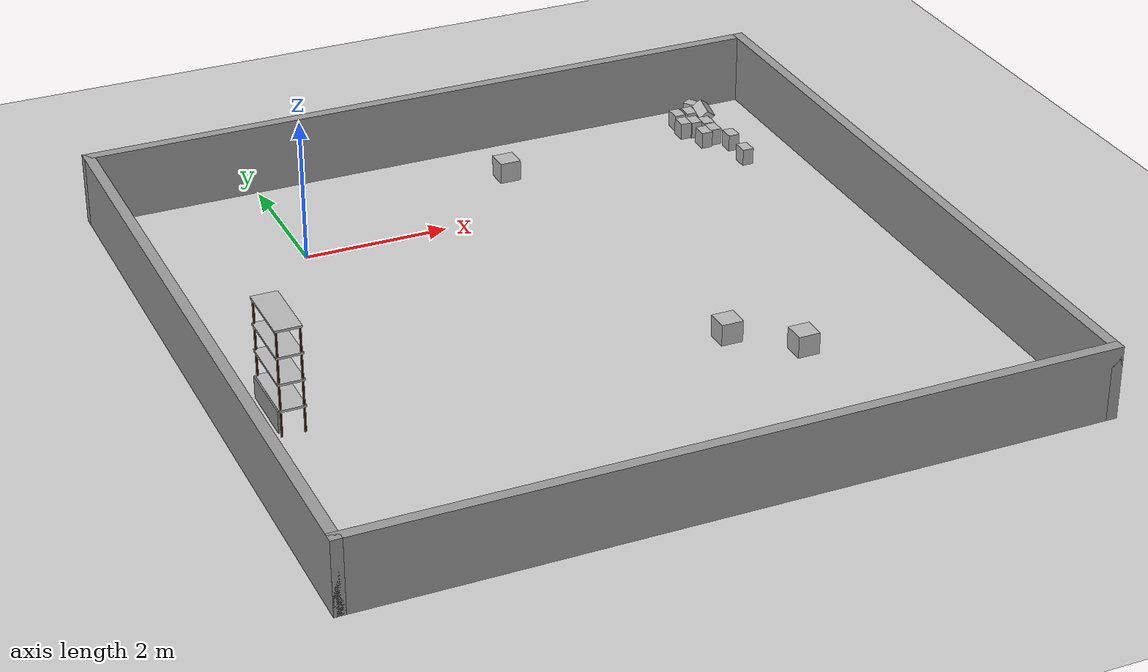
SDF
<sdf version="1.7">
 <world name="default">
  <model name="ground_plane">
   <static>1</static>
   <link name="link">
    <collision name="collision">
     <geometry><plane><normal>0 0 1</normal><size>100 100</size></plane></geometry>
     <surface><friction><ode><mu>100</mu><mu2>50</mu2></ode></friction></surface>
    </collision>
    <visual name="visual">
     <cast_shadows>0</cast_shadows>
     <geometry><plane><normal>0 0 1</normal><size>100 100</size></plane></geometry>
     <material>
      <script><uri>file://media/materials/scripts/gazebo.material</uri><name>Gazebo/Grey</name></script>
     </material>
    </visual>
   </link>
  </model>
  <model name="EmptyRoom">
   <pose>2.61415 -2.78471 0 0 -0 0</pose>
   <link name="Wall_1">
    <collision name="Wall_1_Collision">
     <geometry><box><size>10 0.15 1</size></box></geometry>
     <pose>0 0 0.5 0 -0 0</pose>
    </collision>
    <visual name="Wall_1_Visual">
     <pose>0 0 0.5 0 -0 0</pose>
     <geometry><box><size>10 0.15 1</size></box></geometry>
     <material>
      <script><uri>file://media/materials/scripts/gazebo.material</uri><name>Gazebo/Grey</name></script>
      <ambient>1 1 1 1</ambient>
     </material>
     <meta><layer>0</layer></meta>
    </visual>
    <pose>-4.925 0 0 0 -0 -1.5708</pose>
   </link>
   <link name="Wall_2">
    <collision name="Wall_2_Collision">
     <geometry><box><size>10 0.15 1</size></box></geometry>
     <pose>0 0 0.5 0 -0 0</pose>
    </collision>
    <visual name="Wall_2_Visual">
     <pose>0 0 0.5 0 -0 0</pose>
     <geometry><box><size>10 0.15 1</size></box></geometry>
     <material>
      <script><uri>file://media/materials/scripts/gazebo.material</uri><name>Gazebo/Grey</name></script>
      <ambient>1 1 1 1</ambient>
     </material>
     <meta><layer>0</layer></meta>
    </visual>
    <pose>-0 -4.925 0 0 -0 0</pose>
   </link>
   <link name="Wall_3">
    <collision name="Wall_3_Collision">
     <geometry><box><size>10 0.15 1</size></box></geometry>
     <pose>0 0 0.5 0 -0 0</pose>
    </collision>
    <visual name="Wall_3_Visual">
     <pose>0 0 0.5 0 -0 0</pose>
     <geometry><box><size>10 0.15 1</size></box></geometry>
     <material>
      <script><uri>file://media/materials/scripts/gazebo.material</uri><name>Gazebo/Grey</name></script>
      <ambient>1 1 1 1</ambient>
     </material>
     <meta><layer>0</layer></meta>
    </visual>
    <pose>4.925 0 0 0 -0 1.5708</pose>
   </link>
   <link name="Wall_4">
    <collision name="Wall_4_Collision">
     <geometry><box><size>10 0.15 1</size></box></geometry>
     <pose>0 0 0.5 0 -0 0</pose>
    </collision>
    <visual name="Wall_4_Visual">
     <pose>0 0 0.5 0 -0 0</pose>
     <geometry><box><size>10 0.15 1</size></box></geometry>
     <material>
      <script><uri>file://media/materials/scripts/gazebo.material</uri><name>Gazebo/Grey</name></script>
      <ambient>1 1 1 1</ambient>
     </material>
     <meta><layer>0</layer></meta>
    </visual>
    <pose>-0 4.925 0 0 -0 3.14159</pose>
   </link>
   <static>1</static>
  </model>
  <model name="box_4">
   <link name="link">
    <inertial>
     <inertia>
      <ixx>0.00220983</ixx>
      <ixy>0</ixy>
      <ixz>0</ixz>
      <iyy>0.00128087</iyy>
      <iyz>0</iyz>
      <izz>0.00244903</izz>
     </inertia>
     <mass>0.01</mass>
    </inertial>
    <visual name="visual1">
     <cast_shadows>0</cast_shadows>
     <geometry><mesh><uri>model://box/meshes/box.dae</uri></mesh></geometry>
     <material>
      <shader type="pixel"><normal_map>__default__</normal_map></shader>
      <emissive>0 0 0 1</emissive>
     </material>
     <pose>0 0 -0.12 0 -0 0</pose>
    </visual>
    <collision name="collision_0">
     <geometry><box><size>0.16 0.22 0.24</size></box></geometry>
     <surface>
      <friction>
       <ode><mu>1</mu><mu2>1</mu2><fdir1>0 0 0</fdir1><slip1>0</slip1><slip2>0</slip2></ode>
       <torsional>
        <coefficient>1</coefficient>
        <patch_radius>0</patch_radius>
        <surface_radius>0</surface_radius>
        <use_patch_radius>1</use_patch_radius>
        <ode><slip>0</slip></ode>
       </torsional>
      </friction>
      <bounce><restitution_coefficient>0</restitution_coefficient><threshold>1e+06</threshold></bounce>
      <contact>
       <collide_without_contact>0</collide_without_contact>
       <collide_without_contact_bitmask>1</collide_without_contact_bitmask>
       <collide_bitmask>1</collide_bitmask>
       <ode>
        <soft_cfm>0</soft_cfm>
        <soft_erp>0.2</soft_erp>
        <kp>1e+13</kp>
        <kd>1</kd>
        <max_vel>0.01</max_vel>
        <min_depth>0</min_depth>
       </ode>
       <bullet>
        <split_impulse>1</split_impulse>
        <split_impulse_penetration_threshold>-0.01</split_impulse_penetration_threshold>
        <soft_cfm>0</soft_cfm>
        <soft_erp>0.2</soft_erp>
        <kp>1e+13</kp>
        <kd>1</kd>
       </bullet>
      </contact>
     </surface>
    </collision>
   </link>
   <static>0</static>
   <pose>6.3618 0.900243 0.12 0 3e-06 0.003147</pose>
  </model>
  <model name="box_6">
   <link name="link">
    <inertial>
     <inertia>
      <ixx>0.00220983</ixx>
      <ixy>0</ixy>
      <ixz>0</ixz>
      <iyy>0.00128087</iyy>
      <iyz>0</iyz>
      <izz>0.00244903</izz>
     </inertia>
     <mass>0.01</mass>
    </inertial>
    <visual name="visual1">
     <cast_shadows>0</cast_shadows>
     <geometry><mesh><uri>model://box/meshes/box.dae</uri></mesh></geometry>
     <material>
      <shader type="pixel"><normal_map>__default__</normal_map></shader>
      <emissive>0 0 0 1</emissive>
     </material>
     <pose>0 0 -0.12 0 -0 0</pose>
    </visual>
    <collision name="collision_0">
     <geometry><box><size>0.16 0.22 0.24</size></box></geometry>
     <surface>
      <friction>
       <ode><mu>1</mu><mu2>1</mu2><fdir1>0 0 0</fdir1><slip1>0</slip1><slip2>0</slip2></ode>
       <torsional>
        <coefficient>1</coefficient>
        <patch_radius>0</patch_radius>
        <surface_radius>0</surface_radius>
        <use_patch_radius>1</use_patch_radius>
        <ode><slip>0</slip></ode>
       </torsional>
      </friction>
      <bounce><restitution_coefficient>0</restitution_coefficient><threshold>1e+06</threshold></bounce>
      <contact>
       <collide_without_contact>0</collide_without_contact>
       <collide_without_contact_bitmask>1</collide_without_contact_bitmask>
       <collide_bitmask>1</collide_bitmask>
       <ode>
        <soft_cfm>0</soft_cfm>
        <soft_erp>0.2</soft_erp>
        <kp>1e+13</kp>
        <kd>1</kd>
        <max_vel>0.01</max_vel>
        <min_depth>0</min_depth>
       </ode>
       <bullet>
        <split_impulse>1</split_impulse>
        <split_impulse_penetration_threshold>-0.01</split_impulse_penetration_threshold>
        <soft_cfm>0</soft_cfm>
        <soft_erp>0.2</soft_erp>
        <kp>1e+13</kp>
        <kd>1</kd>
       </bullet>
      </contact>
     </surface>
    </collision>
   </link>
   <static>0</static>
   <pose>6.52175 0.940974 0.12 0 -0 0.004081</pose>
  </model>
  <model name="box_7">
   <link name="link">
    <inertial>
     <inertia>
      <ixx>0.00220983</ixx>
      <ixy>0</ixy>
      <ixz>0</ixz>
      <iyy>0.00128087</iyy>
      <iyz>0</iyz>
      <izz>0.00244903</izz>
     </inertia>
     <mass>0.01</mass>
    </inertial>
    <visual name="visual1">
     <cast_shadows>0</cast_shadows>
     <geometry><mesh><uri>model://box/meshes/box.dae</uri></mesh></geometry>
     <material>
      <shader type="pixel"><normal_map>__default__</normal_map></shader>
      <emissive>0 0 0 1</emissive>
     </material>
     <pose>0 0 -0.12 0 -0 0</pose>
    </visual>
    <collision name="collision_0">
     <geometry><box><size>0.16 0.22 0.24</size></box></geometry>
     <surface>
      <friction>
       <ode><mu>1</mu><mu2>1</mu2><fdir1>0 0 0</fdir1><slip1>0</slip1><slip2>0</slip2></ode>
       <torsional>
        <coefficient>1</coefficient>
        <patch_radius>0</patch_radius>
        <surface_radius>0</surface_radius>
        <use_patch_radius>1</use_patch_radius>
        <ode><slip>0</slip></ode>
       </torsional>
      </friction>
      <bounce><restitution_coefficient>0</restitution_coefficient><threshold>1e+06</threshold></bounce>
      <contact>
       <collide_without_contact>0</collide_without_contact>
       <collide_without_contact_bitmask>1</collide_without_contact_bitmask>
       <collide_bitmask>1</collide_bitmask>
       <ode>
        <soft_cfm>0</soft_cfm>
        <soft_erp>0.2</soft_erp>
        <kp>1e+13</kp>
        <kd>1</kd>
        <max_vel>0.01</max_vel>
        <min_depth>0</min_depth>
       </ode>
       <bullet>
        <split_impulse>1</split_impulse>
        <split_impulse_penetration_threshold>-0.01</split_impulse_penetration_threshold>
        <soft_cfm>0</soft_cfm>
        <soft_erp>0.2</soft_erp>
        <kp>1e+13</kp>
        <kd>1</kd>
       </bullet>
      </contact>
     </surface>
    </collision>
   </link>
   <static>0</static>
   <pose>6.53397 1.17825 0.12 0 0 -0.02989</pose>
  </model>
  <model name="rack_2">
   <link name="link">
    <inertial>
     <mass>0.1</mass>
     <inertia><ixx>0.01857</ixx><ixy>0</ixy><ixz>0</ixz><iyy>0.015598</iyy><iyz>0</iyz><izz>0.00305</izz></inertia>
    </inertial>
    <visual name="visual1">
     <cast_shadows>0</cast_shadows>
     <geometry><mesh><uri>model://rack/meshes/rack.dae</uri></mesh></geometry>
     <material>
      <shader type="pixel"><normal_map>__default__</normal_map></shader>
      <emissive>0 0 0 1</emissive>
     </material>
    </visual>
    <visual name="visual_2">
     <cast_shadows>0</cast_shadows>
     <geometry><box><size>0.02 0.9 0.31</size></box></geometry>
     <material>
      <lighting>1</lighting>
      <script><uri>file://media/materials/scripts/gazebo.material</uri><name>Gazebo/Grey</name></script>
      <shader type="pixel"><normal_map>__default__</normal_map></shader>
      <ambient>0.3 0.3 0.3 1</ambient>
      <diffuse>0.7 0.7 0.7 1</diffuse>
      <specular>0.01 0.01 0.01 1</specular>
      <emissive>0 0 0 1</emissive>
     </material>
     <pose>-0.185 0 0.22 0 -0 0</pose>
    </visual>
    <collision name="collision_7">
     <pose>0 0 0.36 0 1.57 1.57</pose>
     <geometry><box><size>0.05 0.35 0.91</size></box></geometry>
     <surface>
      <friction>
       <ode><mu>1</mu><mu2>1</mu2><fdir1>0 0 0</fdir1><slip1>0</slip1><slip2>0</slip2></ode>
       <torsional>
        <coefficient>1</coefficient>
        <patch_radius>0</patch_radius>
        <surface_radius>0</surface_radius>
        <use_patch_radius>1</use_patch_radius>
        <ode><slip>0</slip></ode>
       </torsional>
      </friction>
      <bounce><restitution_coefficient>0</restitution_coefficient><threshold>1e+06</threshold></bounce>
      <contact>
       <collide_without_contact>0</collide_without_contact>
       <collide_without_contact_bitmask>1</collide_without_contact_bitmask>
       <collide_bitmask>1</collide_bitmask>
       <ode>
        <soft_cfm>0</soft_cfm>
        <soft_erp>0.2</soft_erp>
        <kp>1e+15</kp>
        <kd>1e+13</kd>
        <max_vel>0.01</max_vel>
        <min_depth>0</min_depth>
       </ode>
       <bullet>
        <split_impulse>1</split_impulse>
        <split_impulse_penetration_threshold>-0.01</split_impulse_penetration_threshold>
        <soft_cfm>0</soft_cfm>
        <soft_erp>0.2</soft_erp>
        <kp>1e+13</kp>
        <kd>1</kd>
       </bullet>
      </contact>
     </surface>
    </collision>
    <collision name="collision_6">
     <pose>0 0 0.725 0 1.57 1.57</pose>
     <geometry><box><size>0.05 0.35 0.91</size></box></geometry>
     <surface>
      <friction>
       <ode><mu>1</mu><mu2>1</mu2><fdir1>0 0 0</fdir1><slip1>0</slip1><slip2>0</slip2></ode>
       <torsional>
        <coefficient>1</coefficient>
        <patch_radius>0</patch_radius>
        <surface_radius>0</surface_radius>
        <use_patch_radius>1</use_patch_radius>
        <ode><slip>0</slip></ode>
       </torsional>
      </friction>
      <bounce><restitution_coefficient>0</restitution_coefficient><threshold>1e+06</threshold></bounce>
      <contact>
       <collide_without_contact>0</collide_without_contact>
       <collide_without_contact_bitmask>1</collide_without_contact_bitmask>
       <collide_bitmask>1</collide_bitmask>
       <ode>
        <soft_cfm>0</soft_cfm>
        <soft_erp>0.2</soft_erp>
        <kp>1e+15</kp>
        <kd>1e+13</kd>
        <max_vel>0.01</max_vel>
        <min_depth>0</min_depth>
       </ode>
       <bullet>
        <split_impulse>1</split_impulse>
        <split_impulse_penetration_threshold>-0.01</split_impulse_penetration_threshold>
        <soft_cfm>0</soft_cfm>
        <soft_erp>0.2</soft_erp>
        <kp>1e+13</kp>
        <kd>1</kd>
       </bullet>
      </contact>
     </surface>
    </collision>
    <collision name="collision_5">
     <pose>0 0 1.09 0 1.57 1.57</pose>
     <geometry><box><size>0.05 0.35 0.91</size></box></geometry>
     <surface>
      <friction>
       <ode><mu>1</mu><mu2>1</mu2><fdir1>0 0 0</fdir1><slip1>0</slip1><slip2>0</slip2></ode>
       <torsional>
        <coefficient>1</coefficient>
        <patch_radius>0</patch_radius>
        <surface_radius>0</surface_radius>
        <use_patch_radius>1</use_patch_radius>
        <ode><slip>0</slip></ode>
       </torsional>
      </friction>
      <bounce><restitution_coefficient>0</restitution_coefficient><threshold>1e+06</threshold></bounce>
      <contact>
       <collide_without_contact>0</collide_without_contact>
       <collide_without_contact_bitmask>1</collide_without_contact_bitmask>
       <collide_bitmask>1</collide_bitmask>
       <ode>
        <soft_cfm>0</soft_cfm>
        <soft_erp>0.2</soft_erp>
        <kp>1e+15</kp>
        <kd>1e+13</kd>
        <max_vel>0.01</max_vel>
        <min_depth>0</min_depth>
       </ode>
       <bullet>
        <split_impulse>1</split_impulse>
        <split_impulse_penetration_threshold>-0.01</split_impulse_penetration_threshold>
        <soft_cfm>0</soft_cfm>
        <soft_erp>0.2</soft_erp>
        <kp>1e+13</kp>
        <kd>1</kd>
       </bullet>
      </contact>
     </surface>
    </collision>
    <collision name="collision_3">
     <pose>0 0 1.455 0 1.57 1.57</pose>
     <geometry><box><size>0.05 0.35 0.91</size></box></geometry>
     <surface>
      <friction>
       <ode><mu>1</mu><mu2>1</mu2><fdir1>0 0 0</fdir1><slip1>0</slip1><slip2>0</slip2></ode>
       <torsional>
        <coefficient>1</coefficient>
        <patch_radius>0</patch_radius>
        <surface_radius>0</surface_radius>
        <use_patch_radius>1</use_patch_radius>
        <ode><slip>0</slip></ode>
       </torsional>
      </friction>
      <bounce><restitution_coefficient>0</restitution_coefficient><threshold>1e+06</threshold></bounce>
      <contact>
       <collide_without_contact>0</collide_without_contact>
       <collide_without_contact_bitmask>1</collide_without_contact_bitmask>
       <collide_bitmask>1</collide_bitmask>
       <ode>
        <soft_cfm>0</soft_cfm>
        <soft_erp>0.2</soft_erp>
        <kp>1e+15</kp>
        <kd>1e+13</kd>
        <max_vel>0.01</max_vel>
        <min_depth>0</min_depth>
       </ode>
       <bullet>
        <split_impulse>1</split_impulse>
        <split_impulse_penetration_threshold>-0.01</split_impulse_penetration_threshold>
        <soft_cfm>0</soft_cfm>
        <soft_erp>0.2</soft_erp>
        <kp>1e+13</kp>
        <kd>1</kd>
       </bullet>
      </contact>
     </surface>
    </collision>
    <collision name="collision_1">
     <pose>0 0.43 0.73 0 -0 1.57</pose>
     <geometry><box><size>0.05 0.36 1.46</size></box></geometry>
     <surface>
      <friction>
       <ode><mu>1</mu><mu2>1</mu2><fdir1>0 0 0</fdir1><slip1>0</slip1><slip2>0</slip2></ode>
       <torsional>
        <coefficient>1</coefficient>
        <patch_radius>0</patch_radius>
        <surface_radius>0</surface_radius>
        <use_patch_radius>1</use_patch_radius>
        <ode><slip>0</slip></ode>
       </torsional>
      </friction>
      <bounce><restitution_coefficient>0</restitution_coefficient><threshold>1e+06</threshold></bounce>
      <contact>
       <collide_without_contact>0</collide_without_contact>
       <collide_without_contact_bitmask>1</collide_without_contact_bitmask>
       <collide_bitmask>1</collide_bitmask>
       <ode>
        <soft_cfm>0</soft_cfm>
        <soft_erp>0.2</soft_erp>
        <kp>1e+15</kp>
        <kd>1e+13</kd>
        <max_vel>0.01</max_vel>
        <min_depth>0</min_depth>
       </ode>
       <bullet>
        <split_impulse>1</split_impulse>
        <split_impulse_penetration_threshold>-0.01</split_impulse_penetration_threshold>
        <soft_cfm>0</soft_cfm>
        <soft_erp>0.2</soft_erp>
        <kp>1e+13</kp>
        <kd>1</kd>
       </bullet>
      </contact>
     </surface>
    </collision>
    <collision name="collision_2">
     <pose>0 -0.43 0.73 0 -0 1.57</pose>
     <geometry><box><size>0.05 0.36 1.46</size></box></geometry>
     <surface>
      <friction>
       <ode><mu>1</mu><mu2>1</mu2><fdir1>0 0 0</fdir1><slip1>0</slip1><slip2>0</slip2></ode>
       <torsional>
        <coefficient>1</coefficient>
        <patch_radius>0</patch_radius>
        <surface_radius>0</surface_radius>
        <use_patch_radius>1</use_patch_radius>
        <ode><slip>0</slip></ode>
       </torsional>
      </friction>
      <bounce><restitution_coefficient>0</restitution_coefficient><threshold>1e+06</threshold></bounce>
      <contact>
       <collide_without_contact>0</collide_without_contact>
       <collide_without_contact_bitmask>1</collide_without_contact_bitmask>
       <collide_bitmask>1</collide_bitmask>
       <ode>
        <soft_cfm>0</soft_cfm>
        <soft_erp>0.2</soft_erp>
        <kp>1e+15</kp>
        <kd>1e+13</kd>
        <max_vel>0.01</max_vel>
        <min_depth>0</min_depth>
       </ode>
       <bullet>
        <split_impulse>1</split_impulse>
        <split_impulse_penetration_threshold>-0.01</split_impulse_penetration_threshold>
        <soft_cfm>0</soft_cfm>
        <soft_erp>0.2</soft_erp>
        <kp>1e+13</kp>
        <kd>1</kd>
       </bullet>
      </contact>
     </surface>
    </collision>
    <collision name="collision">
     <pose>-0.185 0 0.22 0 -0 0</pose>
     <geometry><box><size>0.02 0.9 0.31</size></box></geometry>
     <surface>
      <friction>
       <ode><mu>1</mu><mu2>1</mu2><fdir1>0 0 0</fdir1><slip1>0</slip1><slip2>0</slip2></ode>
       <torsional>
        <coefficient>1</coefficient>
        <patch_radius>0</patch_radius>
        <surface_radius>0</surface_radius>
        <use_patch_radius>1</use_patch_radius>
        <ode><slip>0</slip></ode>
       </torsional>
      </friction>
      <bounce><restitution_coefficient>0</restitution_coefficient><threshold>1e+06</threshold></bounce>
      <contact>
       <collide_without_contact>0</collide_without_contact>
       <collide_without_contact_bitmask>1</collide_without_contact_bitmask>
       <collide_bitmask>1</collide_bitmask>
       <ode>
        <soft_cfm>0</soft_cfm>
        <soft_erp>0.2</soft_erp>
        <kp>1e+15</kp>
        <kd>1e+13</kd>
        <max_vel>0.01</max_vel>
        <min_depth>0</min_depth>
       </ode>
       <bullet>
        <split_impulse>1</split_impulse>
        <split_impulse_penetration_threshold>-0.01</split_impulse_penetration_threshold>
        <soft_cfm>0</soft_cfm>
        <soft_erp>0.2</soft_erp>
        <kp>1e+13</kp>
        <kd>1</kd>
       </bullet>
      </contact>
     </surface>
    </collision>
   </link>
   <static>0</static>
   <pose>-1.578 -3.67534 -0 0 -0 0</pose>
  </model>
  <model name="box_10">
   <link name="link">
    <inertial>
     <inertia>
      <ixx>0.00220983</ixx>
      <ixy>0</ixy>
      <ixz>0</ixz>
      <iyy>0.00128087</iyy>
      <iyz>0</iyz>
      <izz>0.00244903</izz>
     </inertia>
     <mass>0.01</mass>
    </inertial>
    <visual name="visual1">
     <cast_shadows>0</cast_shadows>
     <geometry><mesh><uri>model://box/meshes/box.dae</uri></mesh></geometry>
     <material>
      <shader type="pixel"><normal_map>__default__</normal_map></shader>
      <emissive>0 0 0 1</emissive>
     </material>
     <pose>0 0 -0.12 0 -0 0</pose>
    </visual>
    <collision name="collision_0">
     <geometry><box><size>0.16 0.22 0.24</size></box></geometry>
     <surface>
      <friction>
       <ode><mu>1</mu><mu2>1</mu2><fdir1>0 0 0</fdir1><slip1>0</slip1><slip2>0</slip2></ode>
       <torsional>
        <coefficient>1</coefficient>
        <patch_radius>0</patch_radius>
        <surface_radius>0</surface_radius>
        <use_patch_radius>1</use_patch_radius>
        <ode><slip>0</slip></ode>
       </torsional>
      </friction>
      <bounce><restitution_coefficient>0</restitution_coefficient><threshold>1e+06</threshold></bounce>
      <contact>
       <collide_without_contact>0</collide_without_contact>
       <collide_without_contact_bitmask>1</collide_without_contact_bitmask>
       <collide_bitmask>1</collide_bitmask>
       <ode>
        <soft_cfm>0</soft_cfm>
        <soft_erp>0.2</soft_erp>
        <kp>1e+13</kp>
        <kd>1</kd>
        <max_vel>0.01</max_vel>
        <min_depth>0</min_depth>
       </ode>
       <bullet>
        <split_impulse>1</split_impulse>
        <split_impulse_penetration_threshold>-0.01</split_impulse_penetration_threshold>
        <soft_cfm>0</soft_cfm>
        <soft_erp>0.2</soft_erp>
        <kp>1e+13</kp>
        <kd>1</kd>
       </bullet>
      </contact>
     </surface>
    </collision>
   </link>
   <static>0</static>
   <pose>6.67863 0.672339 0.119992 -2e-06 6e-06 -0.012099</pose>
  </model>
  <model name="box_12">
   <link name="link">
    <inertial>
     <inertia>
      <ixx>0.00220983</ixx>
      <ixy>0</ixy>
      <ixz>0</ixz>
      <iyy>0.00128087</iyy>
      <iyz>0</iyz>
      <izz>0.00244903</izz>
     </inertia>
     <mass>0.01</mass>
    </inertial>
    <visual name="visual1">
     <cast_shadows>0</cast_shadows>
     <geometry><mesh><uri>model://box/meshes/box.dae</uri></mesh></geometry>
     <material>
      <shader type="pixel"><normal_map>__default__</normal_map></shader>
      <emissive>0 0 0 1</emissive>
     </material>
     <pose>0 0 -0.12 0 -0 0</pose>
    </visual>
    <collision name="collision_0">
     <geometry><box><size>0.16 0.22 0.24</size></box></geometry>
     <surface>
      <friction>
       <ode><mu>1</mu><mu2>1</mu2><fdir1>0 0 0</fdir1><slip1>0</slip1><slip2>0</slip2></ode>
       <torsional>
        <coefficient>1</coefficient>
        <patch_radius>0</patch_radius>
        <surface_radius>0</surface_radius>
        <use_patch_radius>1</use_patch_radius>
        <ode><slip>0</slip></ode>
       </torsional>
      </friction>
      <bounce><restitution_coefficient>0</restitution_coefficient><threshold>1e+06</threshold></bounce>
      <contact>
       <collide_without_contact>0</collide_without_contact>
       <collide_without_contact_bitmask>1</collide_without_contact_bitmask>
       <collide_bitmask>1</collide_bitmask>
       <ode>
        <soft_cfm>0</soft_cfm>
        <soft_erp>0.2</soft_erp>
        <kp>1e+13</kp>
        <kd>1</kd>
        <max_vel>0.01</max_vel>
        <min_depth>0</min_depth>
       </ode>
       <bullet>
        <split_impulse>1</split_impulse>
        <split_impulse_penetration_threshold>-0.01</split_impulse_penetration_threshold>
        <soft_cfm>0</soft_cfm>
        <soft_erp>0.2</soft_erp>
        <kp>1e+13</kp>
        <kd>1</kd>
       </bullet>
      </contact>
     </surface>
    </collision>
   </link>
   <static>0</static>
   <pose>6.6123 1.42377 0.259049 -0.925798 -0.738903 -0.391145</pose>
  </model>
  <model name="box_14">
   <link name="link">
    <inertial>
     <inertia>
      <ixx>0.00220983</ixx>
      <ixy>0</ixy>
      <ixz>0</ixz>
      <iyy>0.00128087</iyy>
      <iyz>0</iyz>
      <izz>0.00244903</izz>
     </inertia>
     <mass>0.01</mass>
    </inertial>
    <visual name="visual1">
     <cast_shadows>0</cast_shadows>
     <geometry><mesh><uri>model://box/meshes/box.dae</uri></mesh></geometry>
     <material>
      <shader type="pixel"><normal_map>__default__</normal_map></shader>
      <emissive>0 0 0 1</emissive>
     </material>
     <pose>0 0 -0.12 0 -0 0</pose>
    </visual>
    <collision name="collision_0">
     <geometry><box><size>0.16 0.22 0.24</size></box></geometry>
     <surface>
      <friction>
       <ode><mu>1</mu><mu2>1</mu2><fdir1>0 0 0</fdir1><slip1>0</slip1><slip2>0</slip2></ode>
       <torsional>
        <coefficient>1</coefficient>
        <patch_radius>0</patch_radius>
        <surface_radius>0</surface_radius>
        <use_patch_radius>1</use_patch_radius>
        <ode><slip>0</slip></ode>
       </torsional>
      </friction>
      <bounce><restitution_coefficient>0</restitution_coefficient><threshold>1e+06</threshold></bounce>
      <contact>
       <collide_without_contact>0</collide_without_contact>
       <collide_without_contact_bitmask>1</collide_without_contact_bitmask>
       <collide_bitmask>1</collide_bitmask>
       <ode>
        <soft_cfm>0</soft_cfm>
        <soft_erp>0.2</soft_erp>
        <kp>1e+13</kp>
        <kd>1</kd>
        <max_vel>0.01</max_vel>
        <min_depth>0</min_depth>
       </ode>
       <bullet>
        <split_impulse>1</split_impulse>
        <split_impulse_penetration_threshold>-0.01</split_impulse_penetration_threshold>
        <soft_cfm>0</soft_cfm>
        <soft_erp>0.2</soft_erp>
        <kp>1e+13</kp>
        <kd>1</kd>
       </bullet>
      </contact>
     </surface>
    </collision>
   </link>
   <static>0</static>
   <pose>6.37632 1.2596 0.120001 -1e-06 -0 -0.030069</pose>
  </model>
  <model name="box_16">
   <link name="link">
    <inertial>
     <inertia>
      <ixx>0.00220983</ixx>
      <ixy>0</ixy>
      <ixz>0</ixz>
      <iyy>0.00128087</iyy>
      <iyz>0</iyz>
      <izz>0.00244903</izz>
     </inertia>
     <mass>0.01</mass>
    </inertial>
    <visual name="visual1">
     <cast_shadows>0</cast_shadows>
     <geometry><mesh><uri>model://box/meshes/box.dae</uri></mesh></geometry>
     <material>
      <shader type="pixel"><normal_map>__default__</normal_map></shader>
      <emissive>0 0 0 1</emissive>
     </material>
     <pose>0 0 -0.12 0 -0 0</pose>
    </visual>
    <collision name="collision_0">
     <geometry><box><size>0.16 0.22 0.24</size></box></geometry>
     <surface>
      <friction>
       <ode><mu>1</mu><mu2>1</mu2><fdir1>0 0 0</fdir1><slip1>0</slip1><slip2>0</slip2></ode>
       <torsional>
        <coefficient>1</coefficient>
        <patch_radius>0</patch_radius>
        <surface_radius>0</surface_radius>
        <use_patch_radius>1</use_patch_radius>
        <ode><slip>0</slip></ode>
       </torsional>
      </friction>
      <bounce><restitution_coefficient>0</restitution_coefficient><threshold>1e+06</threshold></bounce>
      <contact>
       <collide_without_contact>0</collide_without_contact>
       <collide_without_contact_bitmask>1</collide_without_contact_bitmask>
       <collide_bitmask>1</collide_bitmask>
       <ode>
        <soft_cfm>0</soft_cfm>
        <soft_erp>0.2</soft_erp>
        <kp>1e+13</kp>
        <kd>1</kd>
        <max_vel>0.01</max_vel>
        <min_depth>0</min_depth>
       </ode>
       <bullet>
        <split_impulse>1</split_impulse>
        <split_impulse_penetration_threshold>-0.01</split_impulse_penetration_threshold>
        <soft_cfm>0</soft_cfm>
        <soft_erp>0.2</soft_erp>
        <kp>1e+13</kp>
        <kd>1</kd>
       </bullet>
      </contact>
     </surface>
    </collision>
   </link>
   <static>0</static>
   <pose>6.21711 1.28742 0.11999 1e-06 3e-06 -0.030112</pose>
  </model>
  <model name="box_17">
   <link name="link">
    <inertial>
     <inertia>
      <ixx>0.00220983</ixx>
      <ixy>0</ixy>
      <ixz>0</ixz>
      <iyy>0.00128087</iyy>
      <iyz>0</iyz>
      <izz>0.00244903</izz>
     </inertia>
     <mass>0.01</mass>
    </inertial>
    <visual name="visual1">
     <cast_shadows>0</cast_shadows>
     <geometry><mesh><uri>model://box/meshes/box.dae</uri></mesh></geometry>
     <material>
      <shader type="pixel"><normal_map>__default__</normal_map></shader>
      <emissive>0 0 0 1</emissive>
     </material>
     <pose>0 0 -0.12 0 -0 0</pose>
    </visual>
    <collision name="collision_0">
     <geometry><box><size>0.16 0.22 0.24</size></box></geometry>
     <surface>
      <friction>
       <ode><mu>1</mu><mu2>1</mu2><fdir1>0 0 0</fdir1><slip1>0</slip1><slip2>0</slip2></ode>
       <torsional>
        <coefficient>1</coefficient>
        <patch_radius>0</patch_radius>
        <surface_radius>0</surface_radius>
        <use_patch_radius>1</use_patch_radius>
        <ode><slip>0</slip></ode>
       </torsional>
      </friction>
      <bounce><restitution_coefficient>0</restitution_coefficient><threshold>1e+06</threshold></bounce>
      <contact>
       <collide_without_contact>0</collide_without_contact>
       <collide_without_contact_bitmask>1</collide_without_contact_bitmask>
       <collide_bitmask>1</collide_bitmask>
       <ode>
        <soft_cfm>0</soft_cfm>
        <soft_erp>0.2</soft_erp>
        <kp>1e+13</kp>
        <kd>1</kd>
        <max_vel>0.01</max_vel>
        <min_depth>0</min_depth>
       </ode>
       <bullet>
        <split_impulse>1</split_impulse>
        <split_impulse_penetration_threshold>-0.01</split_impulse_penetration_threshold>
        <soft_cfm>0</soft_cfm>
        <soft_erp>0.2</soft_erp>
        <kp>1e+13</kp>
        <kd>1</kd>
       </bullet>
      </contact>
     </surface>
    </collision>
   </link>
   <static>0</static>
   <pose>6.44666 1.56372 0.119849 2.3e-05 1.5e-05 -0.001854</pose>
  </model>
  <model name="box_18">
   <link name="link">
    <inertial>
     <inertia>
      <ixx>0.00220983</ixx>
      <ixy>0</ixy>
      <ixz>0</ixz>
      <iyy>0.00128087</iyy>
      <iyz>0</iyz>
      <izz>0.00244903</izz>
     </inertia>
     <mass>0.01</mass>
    </inertial>
    <visual name="visual1">
     <cast_shadows>0</cast_shadows>
     <geometry><mesh><uri>model://box/meshes/box.dae</uri></mesh></geometry>
     <material>
      <shader type="pixel"><normal_map>__default__</normal_map></shader>
      <emissive>0 0 0 1</emissive>
     </material>
     <pose>0 0 -0.12 0 -0 0</pose>
    </visual>
    <collision name="collision_0">
     <geometry><box><size>0.16 0.22 0.24</size></box></geometry>
     <surface>
      <friction>
       <ode><mu>1</mu><mu2>1</mu2><fdir1>0 0 0</fdir1><slip1>0</slip1><slip2>0</slip2></ode>
       <torsional>
        <coefficient>1</coefficient>
        <patch_radius>0</patch_radius>
        <surface_radius>0</surface_radius>
        <use_patch_radius>1</use_patch_radius>
        <ode><slip>0</slip></ode>
       </torsional>
      </friction>
      <bounce><restitution_coefficient>0</restitution_coefficient><threshold>1e+06</threshold></bounce>
      <contact>
       <collide_without_contact>0</collide_without_contact>
       <collide_without_contact_bitmask>1</collide_without_contact_bitmask>
       <collide_bitmask>1</collide_bitmask>
       <ode>
        <soft_cfm>0</soft_cfm>
        <soft_erp>0.2</soft_erp>
        <kp>1e+13</kp>
        <kd>1</kd>
        <max_vel>0.01</max_vel>
        <min_depth>0</min_depth>
       </ode>
       <bullet>
        <split_impulse>1</split_impulse>
        <split_impulse_penetration_threshold>-0.01</split_impulse_penetration_threshold>
        <soft_cfm>0</soft_cfm>
        <soft_erp>0.2</soft_erp>
        <kp>1e+13</kp>
        <kd>1</kd>
       </bullet>
      </contact>
     </surface>
    </collision>
   </link>
   <static>0</static>
   <pose>6.65194 0.18037 0.12 0 4e-06 -0.001246</pose>
  </model>
  <model name="box_20">
   <link name="link">
    <inertial>
     <inertia>
      <ixx>0.00220983</ixx>
      <ixy>0</ixy>
      <ixz>0</ixz>
      <iyy>0.00128087</iyy>
      <iyz>0</iyz>
      <izz>0.00244903</izz>
     </inertia>
     <mass>0.01</mass>
    </inertial>
    <visual name="visual1">
     <cast_shadows>0</cast_shadows>
     <geometry><mesh><uri>model://box/meshes/box.dae</uri></mesh></geometry>
     <material>
      <shader type="pixel"><normal_map>__default__</normal_map></shader>
      <emissive>0 0 0 1</emissive>
     </material>
     <pose>0 0 -0.12 0 -0 0</pose>
    </visual>
    <collision name="collision_0">
     <geometry><box><size>0.16 0.22 0.24</size></box></geometry>
     <surface>
      <friction>
       <ode><mu>1</mu><mu2>1</mu2><fdir1>0 0 0</fdir1><slip1>0</slip1><slip2>0</slip2></ode>
       <torsional>
        <coefficient>1</coefficient>
        <patch_radius>0</patch_radius>
        <surface_radius>0</surface_radius>
        <use_patch_radius>1</use_patch_radius>
        <ode><slip>0</slip></ode>
       </torsional>
      </friction>
      <bounce><restitution_coefficient>0</restitution_coefficient><threshold>1e+06</threshold></bounce>
      <contact>
       <collide_without_contact>0</collide_without_contact>
       <collide_without_contact_bitmask>1</collide_without_contact_bitmask>
       <collide_bitmask>1</collide_bitmask>
       <ode>
        <soft_cfm>0</soft_cfm>
        <soft_erp>0.2</soft_erp>
        <kp>1e+13</kp>
        <kd>1</kd>
        <max_vel>0.01</max_vel>
        <min_depth>0</min_depth>
       </ode>
       <bullet>
        <split_impulse>1</split_impulse>
        <split_impulse_penetration_threshold>-0.01</split_impulse_penetration_threshold>
        <soft_cfm>0</soft_cfm>
        <soft_erp>0.2</soft_erp>
        <kp>1e+13</kp>
        <kd>1</kd>
       </bullet>
      </contact>
     </surface>
    </collision>
   </link>
   <static>0</static>
   <pose>6.63126 1.80308 0.11 -1.5708 -0 0.562607</pose>
  </model>
  <model name="box_21">
   <link name="link">
    <inertial>
     <inertia>
      <ixx>0.00220983</ixx>
      <ixy>0</ixy>
      <ixz>0</ixz>
      <iyy>0.00128087</iyy>
      <iyz>0</iyz>
      <izz>0.00244903</izz>
     </inertia>
     <mass>0.01</mass>
    </inertial>
    <visual name="visual1">
     <cast_shadows>0</cast_shadows>
     <geometry><mesh><uri>model://box/meshes/box.dae</uri></mesh></geometry>
     <material>
      <shader type="pixel"><normal_map>__default__</normal_map></shader>
      <emissive>0 0 0 1</emissive>
     </material>
     <pose>0 0 -0.12 0 -0 0</pose>
    </visual>
    <collision name="collision_0">
     <geometry><box><size>0.16 0.22 0.24</size></box></geometry>
     <surface>
      <friction>
       <ode><mu>1</mu><mu2>1</mu2><fdir1>0 0 0</fdir1><slip1>0</slip1><slip2>0</slip2></ode>
       <torsional>
        <coefficient>1</coefficient>
        <patch_radius>0</patch_radius>
        <surface_radius>0</surface_radius>
        <use_patch_radius>1</use_patch_radius>
        <ode><slip>0</slip></ode>
       </torsional>
      </friction>
      <bounce><restitution_coefficient>0</restitution_coefficient><threshold>1e+06</threshold></bounce>
      <contact>
       <collide_without_contact>0</collide_without_contact>
       <collide_without_contact_bitmask>1</collide_without_contact_bitmask>
       <collide_bitmask>1</collide_bitmask>
       <ode>
        <soft_cfm>0</soft_cfm>
        <soft_erp>0.2</soft_erp>
        <kp>1e+13</kp>
        <kd>1</kd>
        <max_vel>0.01</max_vel>
        <min_depth>0</min_depth>
       </ode>
       <bullet>
        <split_impulse>1</split_impulse>
        <split_impulse_penetration_threshold>-0.01</split_impulse_penetration_threshold>
        <soft_cfm>0</soft_cfm>
        <soft_erp>0.2</soft_erp>
        <kp>1e+13</kp>
        <kd>1</kd>
       </bullet>
      </contact>
     </surface>
    </collision>
   </link>
   <static>0</static>
   <pose>6.25488 1.56363 0.119992 1e-06 1e-06 0.001786</pose>
  </model>
  <model name="DynamicObstacle">
   <pose>4.91657 -4.83729 0.15 0 -0 0</pose>
   <link name="link">
    <inertial>
     <inertia><ixx>0.17</ixx><ixy>0</ixy><ixz>0</ixz><iyy>0.17</iyy><iyz>0</iyz><izz>0.17</izz></inertia>
     <mass>100</mass>
    </inertial>
    <collision name="collision">
     <max_contacts>0</max_contacts>
     <geometry><box><size>0.3 0.3 0.3</size></box></geometry>
     <surface>
      <friction><ode><mu>0</mu><mu2>0</mu2></ode></friction>
      <bounce><restitution_coefficient>0</restitution_coefficient><threshold>0</threshold></bounce>
      <contact><ode><kp>2e+09</kp><kd>1</kd><max_vel>0.01</max_vel><min_depth>0</min_depth></ode></contact>
     </surface>
    </collision>
    <visual name="visual"><geometry><box><size>0.3 0.3 0.3</size></box></geometry></visual>
   </link>
   <plugin name="random" filename="libRandomVelocityPlugin.so">
    <link>link</link>
    <initial_velocity>0 0.05 0</initial_velocity>
    <velocity_factor>0.2</velocity_factor>
    <update_period>5</update_period>
    <min_z>-5</min_z>
    <max_z>0</max_z>
   </plugin>
  </model>
  <model name="DynamicObstacle_0">
   <pose>4.17253 -4.18168 0.15 0 -0 0</pose>
   <link name="link">
    <inertial>
     <inertia><ixx>0.17</ixx><ixy>0</ixy><ixz>0</ixz><iyy>0.17</iyy><iyz>0</iyz><izz>0.17</izz></inertia>
     <mass>100</mass>
    </inertial>
    <collision name="collision">
     <max_contacts>0</max_contacts>
     <geometry><box><size>0.3 0.3 0.3</size></box></geometry>
     <surface>
      <friction><ode><mu>0</mu><mu2>0</mu2></ode></friction>
      <bounce><restitution_coefficient>0</restitution_coefficient><threshold>0</threshold></bounce>
      <contact><ode><kp>2e+09</kp><kd>1</kd><max_vel>0.01</max_vel><min_depth>0</min_depth></ode></contact>
     </surface>
    </collision>
    <visual name="visual"><geometry><box><size>0.3 0.3 0.3</size></box></geometry></visual>
   </link>
   <plugin name="random" filename="libRandomVelocityPlugin.so">
    <link>link</link>
    <initial_velocity>0 0.05 0</initial_velocity>
    <velocity_factor>0.2</velocity_factor>
    <update_period>5</update_period>
    <min_z>-5</min_z>
    <max_z>0</max_z>
   </plugin>
  </model>
  <model name="DynamicObstacle_1">
   <pose>3.35832 1.09192 0.15 0 -0 0</pose>
   <link name="link">
    <inertial>
     <inertia><ixx>0.17</ixx><ixy>0</ixy><ixz>0</ixz><iyy>0.17</iyy><iyz>0</iyz><izz>0.17</izz></inertia>
     <mass>100</mass>
    </inertial>
    <collision name="collision">
     <max_contacts>0</max_contacts>
     <geometry><box><size>0.3 0.3 0.3</size></box></geometry>
     <surface>
      <friction><ode><mu>0</mu><mu2>0</mu2></ode></friction>
      <bounce><restitution_coefficient>0</restitution_coefficient><threshold>0</threshold></bounce>
      <contact><ode><kp>2e+09</kp><kd>1</kd><max_vel>0.01</max_vel><min_depth>0</min_depth></ode></contact>
     </surface>
    </collision>
    <visual name="visual"><geometry><box><size>0.3 0.3 0.3</size></box></geometry></visual>
   </link>
   <plugin name="random" filename="libRandomVelocityPlugin.so">
    <link>link</link>
    <initial_velocity>0 0.05 0</initial_velocity>
    <velocity_factor>0.2</velocity_factor>
    <update_period>5</update_period>
    <min_z>-5</min_z>
    <max_z>0</max_z>
   </plugin>
  </model>
 </world>
</sdf>
